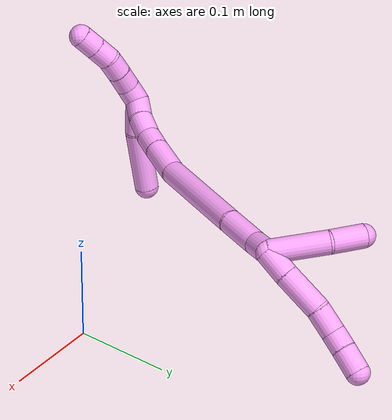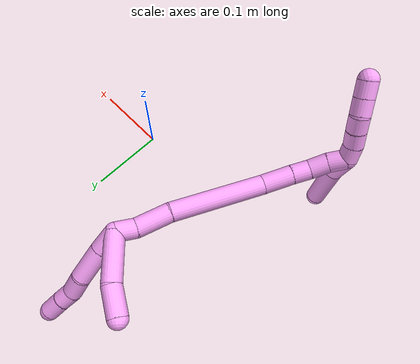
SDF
<sdf version="1.7">
 <world name="default">
  <model name="4">
   <static>0</static>
   <link name="4">
    <collision name="collision-cylinder-e_1_2_8">
     <pose>0.003945 0.01239 0.007158 -1.04694 0.269009 -0.155892</pose>
     <geometry><cylinder><radius>0.0125</radius><length>0.029686</length></cylinder></geometry>
     <surface>
      <friction><ode><mu>1.16</mu><mu2>1.16</mu2><slip1>0</slip1><slip2>0</slip2></ode></friction>
      <contact><ode><kp>1e+06</kp><kd>1</kd><max_vel>0</max_vel><min_depth>0.001</min_depth></ode></contact>
     </surface>
    </collision>
    <visual name="visual-cylinder-e_1_2_8">
     <pose>0.003945 0.01239 0.007158 -1.04694 0.269009 -0.155892</pose>
     <geometry><cylinder><radius>0.0125</radius><length>0.029686</length></cylinder></geometry>
     <material><ambient>1 0.65098 0.996078 1</ambient></material>
    </visual>
    <collision name="collision-cylinder-e_2_8_9">
     <pose>0.013096 0.043283 0.026526 -0.987464 0.23067 -0.124537</pose>
     <geometry><cylinder><radius>0.0125</radius><length>0.045543</length></cylinder></geometry>
     <surface>
      <friction><ode><mu>1.16</mu><mu2>1.16</mu2><slip1>0</slip1><slip2>0</slip2></ode></friction>
      <contact><ode><kp>1e+06</kp><kd>1</kd><max_vel>0</max_vel><min_depth>0.001</min_depth></ode></contact>
     </surface>
    </collision>
    <visual name="visual-cylinder-e_2_8_9">
     <pose>0.013096 0.043283 0.026526 -0.987464 0.23067 -0.124537</pose>
     <geometry><cylinder><radius>0.0125</radius><length>0.045543</length></cylinder></geometry>
     <material><ambient>1 0.65098 0.996078 1</ambient></material>
    </visual>
    <collision name="collision-cylinder-e_3_9_10">
     <pose>0.019255 0.074396 0.044609 -1.13497 0.068376 -0.043595</pose>
     <geometry><cylinder><radius>0.0125</radius><length>0.027886</length></cylinder></geometry>
     <surface>
      <friction><ode><mu>1.16</mu><mu2>1.16</mu2><slip1>0</slip1><slip2>0</slip2></ode></friction>
      <contact><ode><kp>1e+06</kp><kd>1</kd><max_vel>0</max_vel><min_depth>0.001</min_depth></ode></contact>
     </surface>
    </collision>
    <visual name="visual-cylinder-e_3_9_10">
     <pose>0.019255 0.074396 0.044609 -1.13497 0.068376 -0.043595</pose>
     <geometry><cylinder><radius>0.0125</radius><length>0.027886</length></cylinder></geometry>
     <material><ambient>1 0.65098 0.996078 1</ambient></material>
    </visual>
    <collision name="collision-cylinder-e_4_10_11">
     <pose>0.023687 0.095824 0.053839 -1.20696 0.353246 -0.244812</pose>
     <geometry><cylinder><radius>0.0125</radius><length>0.020113</length></cylinder></geometry>
     <surface>
      <friction><ode><mu>1.16</mu><mu2>1.16</mu2><slip1>0</slip1><slip2>0</slip2></ode></friction>
      <contact><ode><kp>1e+06</kp><kd>1</kd><max_vel>0</max_vel><min_depth>0.001</min_depth></ode></contact>
     </surface>
    </collision>
    <visual name="visual-cylinder-e_4_10_11">
     <pose>0.023687 0.095824 0.053839 -1.20696 0.353246 -0.244812</pose>
     <geometry><cylinder><radius>0.0125</radius><length>0.020113</length></cylinder></geometry>
     <material><ambient>1 0.65098 0.996078 1</ambient></material>
    </visual>
    <collision name="collision-cylinder-e_5_11_6">
     <pose>0.031069 0.116662 0.061608 -1.21915 0.295866 -0.207372</pose>
     <geometry><cylinder><radius>0.0125</radius><length>0.026772</length></cylinder></geometry>
     <surface>
      <friction><ode><mu>1.16</mu><mu2>1.16</mu2><slip1>0</slip1><slip2>0</slip2></ode></friction>
      <contact><ode><kp>1e+06</kp><kd>1</kd><max_vel>0</max_vel><min_depth>0.001</min_depth></ode></contact>
     </surface>
    </collision>
    <visual name="visual-cylinder-e_5_11_6">
     <pose>0.031069 0.116662 0.061608 -1.21915 0.295866 -0.207372</pose>
     <geometry><cylinder><radius>0.0125</radius><length>0.026772</length></cylinder></geometry>
     <material><ambient>1 0.65098 0.996078 1</ambient></material>
    </visual>
    <collision name="collision-cylinder-e_1_2_12">
     <pose>0.003291 -0.000436 0.031239 0.01397 0.104947 0.000734</pose>
     <geometry><cylinder><radius>0.0125</radius><length>0.06283</length></cylinder></geometry>
     <surface>
      <friction><ode><mu>1.16</mu><mu2>1.16</mu2><slip1>0</slip1><slip2>0</slip2></ode></friction>
      <contact><ode><kp>1e+06</kp><kd>1</kd><max_vel>0</max_vel><min_depth>0.001</min_depth></ode></contact>
     </surface>
    </collision>
    <visual name="visual-cylinder-e_1_2_12">
     <pose>0.003291 -0.000436 0.031239 0.01397 0.104947 0.000734</pose>
     <geometry><cylinder><radius>0.0125</radius><length>0.06283</length></cylinder></geometry>
     <material><ambient>1 0.65098 0.996078 1</ambient></material>
    </visual>
    <collision name="collision-cylinder-e_2_12_5">
     <pose>0.00374 -0.001302 0.08084 0.023348 -0.153485 -0.001795</pose>
     <geometry><cylinder><radius>0.0125</radius><length>0.03717</length></cylinder></geometry>
     <surface>
      <friction><ode><mu>1.16</mu><mu2>1.16</mu2><slip1>0</slip1><slip2>0</slip2></ode></friction>
      <contact><ode><kp>1e+06</kp><kd>1</kd><max_vel>0</max_vel><min_depth>0.001</min_depth></ode></contact>
     </surface>
    </collision>
    <visual name="visual-cylinder-e_2_12_5">
     <pose>0.00374 -0.001302 0.08084 0.023348 -0.153485 -0.001795</pose>
     <geometry><cylinder><radius>0.0125</radius><length>0.03717</length></cylinder></geometry>
     <material><ambient>1 0.65098 0.996078 1</ambient></material>
    </visual>
    <collision name="collision-cylinder-e_1_2_13">
     <pose>-0.011718 -0.004344 -0.002254 2.04943 -1.17515 -1.66231</pose>
     <geometry><cylinder><radius>0.0125</radius><length>0.025398</length></cylinder></geometry>
     <surface>
      <friction><ode><mu>1.16</mu><mu2>1.16</mu2><slip1>0</slip1><slip2>0</slip2></ode></friction>
      <contact><ode><kp>1e+06</kp><kd>1</kd><max_vel>0</max_vel><min_depth>0.001</min_depth></ode></contact>
     </surface>
    </collision>
    <visual name="visual-cylinder-e_1_2_13">
     <pose>-0.011718 -0.004344 -0.002254 2.04943 -1.17515 -1.66231</pose>
     <geometry><cylinder><radius>0.0125</radius><length>0.025398</length></cylinder></geometry>
     <material><ambient>1 0.65098 0.996078 1</ambient></material>
    </visual>
    <collision name="collision-cylinder-e_2_13_14">
     <pose>-0.040561 -0.020452 -0.012161 2.14754 -0.88429 -1.43507</pose>
     <geometry><cylinder><radius>0.0125</radius><length>0.044283</length></cylinder></geometry>
     <surface>
      <friction><ode><mu>1.16</mu><mu2>1.16</mu2><slip1>0</slip1><slip2>0</slip2></ode></friction>
      <contact><ode><kp>1e+06</kp><kd>1</kd><max_vel>0</max_vel><min_depth>0.001</min_depth></ode></contact>
     </surface>
    </collision>
    <visual name="visual-cylinder-e_2_13_14">
     <pose>-0.040561 -0.020452 -0.012161 2.14754 -0.88429 -1.43507</pose>
     <geometry><cylinder><radius>0.0125</radius><length>0.044283</length></cylinder></geometry>
     <material><ambient>1 0.65098 0.996078 1</ambient></material>
    </visual>
    <collision name="collision-cylinder-e_3_14_15">
     <pose>-0.110026 -0.059375 -0.034592 2.06912 -1.03721 -1.53026</pose>
     <geometry><cylinder><radius>0.0125</radius><length>0.121579</length></cylinder></geometry>
     <surface>
      <friction><ode><mu>1.16</mu><mu2>1.16</mu2><slip1>0</slip1><slip2>0</slip2></ode></friction>
      <contact><ode><kp>1e+06</kp><kd>1</kd><max_vel>0</max_vel><min_depth>0.001</min_depth></ode></contact>
     </surface>
    </collision>
    <visual name="visual-cylinder-e_3_14_15">
     <pose>-0.110026 -0.059375 -0.034592 2.06912 -1.03721 -1.53026</pose>
     <geometry><cylinder><radius>0.0125</radius><length>0.121579</length></cylinder></geometry>
     <material><ambient>1 0.65098 0.996078 1</ambient></material>
    </visual>
    <collision name="collision-cylinder-e_4_15_16">
     <pose>-0.176754 -0.098948 -0.053192 1.86953 -0.836456 -1.08365</pose>
     <geometry><cylinder><radius>0.0125</radius><length>0.038768</length></cylinder></geometry>
     <surface>
      <friction><ode><mu>1.16</mu><mu2>1.16</mu2><slip1>0</slip1><slip2>0</slip2></ode></friction>
      <contact><ode><kp>1e+06</kp><kd>1</kd><max_vel>0</max_vel><min_depth>0.001</min_depth></ode></contact>
     </surface>
    </collision>
    <visual name="visual-cylinder-e_4_15_16">
     <pose>-0.176754 -0.098948 -0.053192 1.86953 -0.836456 -1.08365</pose>
     <geometry><cylinder><radius>0.0125</radius><length>0.038768</length></cylinder></geometry>
     <material><ambient>1 0.65098 0.996078 1</ambient></material>
    </visual>
    <collision name="collision-cylinder-e_5_16_17">
     <pose>-0.199849 -0.118707 -0.058829 1.81297 -0.855404 -1.05438</pose>
     <geometry><cylinder><radius>0.0125</radius><length>0.023071</length></cylinder></geometry>
     <surface>
      <friction><ode><mu>1.16</mu><mu2>1.16</mu2><slip1>0</slip1><slip2>0</slip2></ode></friction>
      <contact><ode><kp>1e+06</kp><kd>1</kd><max_vel>0</max_vel><min_depth>0.001</min_depth></ode></contact>
     </surface>
    </collision>
    <visual name="visual-cylinder-e_5_16_17">
     <pose>-0.199849 -0.118707 -0.058829 1.81297 -0.855404 -1.05438</pose>
     <geometry><cylinder><radius>0.0125</radius><length>0.023071</length></cylinder></geometry>
     <material><ambient>1 0.65098 0.996078 1</ambient></material>
    </visual>
    <collision name="collision-cylinder-e_6_17_18">
     <pose>-0.215518 -0.135779 -0.062124 1.72183 -0.615813 -0.708903</pose>
     <geometry><cylinder><radius>0.0125</radius><length>0.024104</length></cylinder></geometry>
     <surface>
      <friction><ode><mu>1.16</mu><mu2>1.16</mu2><slip1>0</slip1><slip2>0</slip2></ode></friction>
      <contact><ode><kp>1e+06</kp><kd>1</kd><max_vel>0</max_vel><min_depth>0.001</min_depth></ode></contact>
     </surface>
    </collision>
    <visual name="visual-cylinder-e_6_17_18">
     <pose>-0.215518 -0.135779 -0.062124 1.72183 -0.615813 -0.708903</pose>
     <geometry><cylinder><radius>0.0125</radius><length>0.024104</length></cylinder></geometry>
     <material><ambient>1 0.65098 0.996078 1</ambient></material>
    </visual>
    <collision name="collision-cylinder-e_7_18_1">
     <pose>-0.229007 -0.154821 -0.062874 1.49254 -0.609744 -0.566308</pose>
     <geometry><cylinder><radius>0.0125</radius><length>0.022797</length></cylinder></geometry>
     <surface>
      <friction><ode><mu>1.16</mu><mu2>1.16</mu2><slip1>0</slip1><slip2>0</slip2></ode></friction>
      <contact><ode><kp>1e+06</kp><kd>1</kd><max_vel>0</max_vel><min_depth>0.001</min_depth></ode></contact>
     </surface>
    </collision>
    <visual name="visual-cylinder-e_7_18_1">
     <pose>-0.229007 -0.154821 -0.062874 1.49254 -0.609744 -0.566308</pose>
     <geometry><cylinder><radius>0.0125</radius><length>0.022797</length></cylinder></geometry>
     <material><ambient>1 0.65098 0.996078 1</ambient></material>
    </visual>
    <collision name="collision-cylinder-e_1_1_19">
     <pose>-0.241969 -0.147626 -0.063217 -1.63576 -0.370885 0.395173</pose>
     <geometry><cylinder><radius>0.0125</radius><length>0.035506</length></cylinder></geometry>
     <surface>
      <friction><ode><mu>1.16</mu><mu2>1.16</mu2><slip1>0</slip1><slip2>0</slip2></ode></friction>
      <contact><ode><kp>1e+06</kp><kd>1</kd><max_vel>0</max_vel><min_depth>0.001</min_depth></ode></contact>
     </surface>
    </collision>
    <visual name="visual-cylinder-e_1_1_19">
     <pose>-0.241969 -0.147626 -0.063217 -1.63576 -0.370885 0.395173</pose>
     <geometry><cylinder><radius>0.0125</radius><length>0.035506</length></cylinder></geometry>
     <material><ambient>1 0.65098 0.996078 1</ambient></material>
    </visual>
    <collision name="collision-cylinder-e_2_19_4">
     <pose>-0.261461 -0.101861 -0.06061 -1.4456 -0.416905 0.368903</pose>
     <geometry><cylinder><radius>0.0125</radius><length>0.064494</length></cylinder></geometry>
     <surface>
      <friction><ode><mu>1.16</mu><mu2>1.16</mu2><slip1>0</slip1><slip2>0</slip2></ode></friction>
      <contact><ode><kp>1e+06</kp><kd>1</kd><max_vel>0</max_vel><min_depth>0.001</min_depth></ode></contact>
     </surface>
    </collision>
    <visual name="visual-cylinder-e_2_19_4">
     <pose>-0.261461 -0.101861 -0.06061 -1.4456 -0.416905 0.368903</pose>
     <geometry><cylinder><radius>0.0125</radius><length>0.064494</length></cylinder></geometry>
     <material><ambient>1 0.65098 0.996078 1</ambient></material>
    </visual>
    <collision name="collision-cylinder-e_1_1_20">
     <pose>-0.232741 -0.172557 -0.066758 2.07217 0.283082 0.472208</pose>
     <geometry><cylinder><radius>0.0125</radius><length>0.02</length></cylinder></geometry>
     <surface>
      <friction><ode><mu>1.16</mu><mu2>1.16</mu2><slip1>0</slip1><slip2>0</slip2></ode></friction>
      <contact><ode><kp>1e+06</kp><kd>1</kd><max_vel>0</max_vel><min_depth>0.001</min_depth></ode></contact>
     </surface>
    </collision>
    <visual name="visual-cylinder-e_1_1_20">
     <pose>-0.232741 -0.172557 -0.066758 2.07217 0.283082 0.472208</pose>
     <geometry><cylinder><radius>0.0125</radius><length>0.02</length></cylinder></geometry>
     <material><ambient>1 0.65098 0.996078 1</ambient></material>
    </visual>
    <collision name="collision-cylinder-e_2_20_21">
     <pose>-0.225176 -0.188458 -0.075984 2.12319 0.497516 0.853976</pose>
     <geometry><cylinder><radius>0.0125</radius><length>0.02</length></cylinder></geometry>
     <surface>
      <friction><ode><mu>1.16</mu><mu2>1.16</mu2><slip1>0</slip1><slip2>0</slip2></ode></friction>
      <contact><ode><kp>1e+06</kp><kd>1</kd><max_vel>0</max_vel><min_depth>0.001</min_depth></ode></contact>
     </surface>
    </collision>
    <visual name="visual-cylinder-e_2_20_21">
     <pose>-0.225176 -0.188458 -0.075984 2.12319 0.497516 0.853976</pose>
     <geometry><cylinder><radius>0.0125</radius><length>0.02</length></cylinder></geometry>
     <material><ambient>1 0.65098 0.996078 1</ambient></material>
    </visual>
    <collision name="collision-cylinder-e_3_21_22">
     <pose>-0.216115 -0.203519 -0.08551 2.14596 0.443206 0.785999</pose>
     <geometry><cylinder><radius>0.0125</radius><length>0.02</length></cylinder></geometry>
     <surface>
      <friction><ode><mu>1.16</mu><mu2>1.16</mu2><slip1>0</slip1><slip2>0</slip2></ode></friction>
      <contact><ode><kp>1e+06</kp><kd>1</kd><max_vel>0</max_vel><min_depth>0.001</min_depth></ode></contact>
     </surface>
    </collision>
    <visual name="visual-cylinder-e_3_21_22">
     <pose>-0.216115 -0.203519 -0.08551 2.14596 0.443206 0.785999</pose>
     <geometry><cylinder><radius>0.0125</radius><length>0.02</length></cylinder></geometry>
     <material><ambient>1 0.65098 0.996078 1</ambient></material>
    </visual>
    <collision name="collision-cylinder-e_4_22_23">
     <pose>-0.209437 -0.21794 -0.097316 2.35991 0.241261 0.572243</pose>
     <geometry><cylinder><radius>0.0125</radius><length>0.02</length></cylinder></geometry>
     <surface>
      <friction><ode><mu>1.16</mu><mu2>1.16</mu2><slip1>0</slip1><slip2>0</slip2></ode></friction>
      <contact><ode><kp>1e+06</kp><kd>1</kd><max_vel>0</max_vel><min_depth>0.001</min_depth></ode></contact>
     </surface>
    </collision>
    <visual name="visual-cylinder-e_4_22_23">
     <pose>-0.209437 -0.21794 -0.097316 2.35991 0.241261 0.572243</pose>
     <geometry><cylinder><radius>0.0125</radius><length>0.02</length></cylinder></geometry>
     <material><ambient>1 0.65098 0.996078 1</ambient></material>
    </visual>
    <collision name="collision-cylinder-e_5_23_3">
     <pose>-0.204708 -0.231584 -0.111153 2.36659 0.236199 0.565832</pose>
     <geometry><cylinder><radius>0.0125</radius><length>0.02</length></cylinder></geometry>
     <surface>
      <friction><ode><mu>1.16</mu><mu2>1.16</mu2><slip1>0</slip1><slip2>0</slip2></ode></friction>
      <contact><ode><kp>1e+06</kp><kd>1</kd><max_vel>0</max_vel><min_depth>0.001</min_depth></ode></contact>
     </surface>
    </collision>
    <visual name="visual-cylinder-e_5_23_3">
     <pose>-0.204708 -0.231584 -0.111153 2.36659 0.236199 0.565832</pose>
     <geometry><cylinder><radius>0.0125</radius><length>0.02</length></cylinder></geometry>
     <material><ambient>1 0.65098 0.996078 1</ambient></material>
    </visual>
    <collision name="collision-sphere-3">
     <pose>-0.202368 -0.238386 -0.118099 0 -0 0</pose>
     <geometry><sphere><radius>0.0125</radius></sphere></geometry>
     <surface>
      <friction><ode><mu>1.16</mu><mu2>1.16</mu2><slip1>0</slip1><slip2>0</slip2></ode></friction>
      <contact><ode><kp>1e+06</kp><kd>1</kd><max_vel>0</max_vel><min_depth>0.001</min_depth></ode></contact>
     </surface>
    </collision>
    <visual name="visual-sphere-3">
     <pose>-0.202368 -0.238386 -0.118099 0 -0 0</pose>
     <geometry><sphere><radius>0.0125</radius></sphere></geometry>
     <material><ambient>1 0.65098 0.996078 1</ambient></material>
    </visual>
    <collision name="collision-sphere-23">
     <pose>-0.207048 -0.224781 -0.104207 0 -0 0</pose>
     <geometry><sphere><radius>0.0125</radius></sphere></geometry>
     <surface>
      <friction><ode><mu>1.16</mu><mu2>1.16</mu2><slip1>0</slip1><slip2>0</slip2></ode></friction>
      <contact><ode><kp>1e+06</kp><kd>1</kd><max_vel>0</max_vel><min_depth>0.001</min_depth></ode></contact>
     </surface>
    </collision>
    <visual name="visual-sphere-23">
     <pose>-0.207048 -0.224781 -0.104207 0 -0 0</pose>
     <geometry><sphere><radius>0.0125</radius></sphere></geometry>
     <material><ambient>1 0.65098 0.996078 1</ambient></material>
    </visual>
    <collision name="collision-sphere-22">
     <pose>-0.211827 -0.211099 -0.090424 0 -0 0</pose>
     <geometry><sphere><radius>0.0125</radius></sphere></geometry>
     <surface>
      <friction><ode><mu>1.16</mu><mu2>1.16</mu2><slip1>0</slip1><slip2>0</slip2></ode></friction>
      <contact><ode><kp>1e+06</kp><kd>1</kd><max_vel>0</max_vel><min_depth>0.001</min_depth></ode></contact>
     </surface>
    </collision>
    <visual name="visual-sphere-22">
     <pose>-0.211827 -0.211099 -0.090424 0 -0 0</pose>
     <geometry><sphere><radius>0.0125</radius></sphere></geometry>
     <material><ambient>1 0.65098 0.996078 1</ambient></material>
    </visual>
    <collision name="collision-sphere-21">
     <pose>-0.220403 -0.195939 -0.080596 0 -0 0</pose>
     <geometry><sphere><radius>0.0125</radius></sphere></geometry>
     <surface>
      <friction><ode><mu>1.16</mu><mu2>1.16</mu2><slip1>0</slip1><slip2>0</slip2></ode></friction>
      <contact><ode><kp>1e+06</kp><kd>1</kd><max_vel>0</max_vel><min_depth>0.001</min_depth></ode></contact>
     </surface>
    </collision>
    <visual name="visual-sphere-21">
     <pose>-0.220403 -0.195939 -0.080596 0 -0 0</pose>
     <geometry><sphere><radius>0.0125</radius></sphere></geometry>
     <material><ambient>1 0.65098 0.996078 1</ambient></material>
    </visual>
    <collision name="collision-sphere-20">
     <pose>-0.229948 -0.180977 -0.071373 0 -0 0</pose>
     <geometry><sphere><radius>0.0125</radius></sphere></geometry>
     <surface>
      <friction><ode><mu>1.16</mu><mu2>1.16</mu2><slip1>0</slip1><slip2>0</slip2></ode></friction>
      <contact><ode><kp>1e+06</kp><kd>1</kd><max_vel>0</max_vel><min_depth>0.001</min_depth></ode></contact>
     </surface>
    </collision>
    <visual name="visual-sphere-20">
     <pose>-0.229948 -0.180977 -0.071373 0 -0 0</pose>
     <geometry><sphere><radius>0.0125</radius></sphere></geometry>
     <material><ambient>1 0.65098 0.996078 1</ambient></material>
    </visual>
    <collision name="collision-sphere-4">
     <pose>-0.274519 -0.072606 -0.056928 0 -0 0</pose>
     <geometry><sphere><radius>0.0125</radius></sphere></geometry>
     <surface>
      <friction><ode><mu>1.16</mu><mu2>1.16</mu2><slip1>0</slip1><slip2>0</slip2></ode></friction>
      <contact><ode><kp>1e+06</kp><kd>1</kd><max_vel>0</max_vel><min_depth>0.001</min_depth></ode></contact>
     </surface>
    </collision>
    <visual name="visual-sphere-4">
     <pose>-0.274519 -0.072606 -0.056928 0 -0 0</pose>
     <geometry><sphere><radius>0.0125</radius></sphere></geometry>
     <material><ambient>1 0.65098 0.996078 1</ambient></material>
    </visual>
    <collision name="collision-sphere-6">
     <pose>0.034971 0.128683 0.066018 0 -0 0</pose>
     <geometry><sphere><radius>0.0125</radius></sphere></geometry>
     <surface>
      <friction><ode><mu>1.16</mu><mu2>1.16</mu2><slip1>0</slip1><slip2>0</slip2></ode></friction>
      <contact><ode><kp>1e+06</kp><kd>1</kd><max_vel>0</max_vel><min_depth>0.001</min_depth></ode></contact>
     </surface>
    </collision>
    <visual name="visual-sphere-6">
     <pose>0.034971 0.128683 0.066018 0 -0 0</pose>
     <geometry><sphere><radius>0.0125</radius></sphere></geometry>
     <material><ambient>1 0.65098 0.996078 1</ambient></material>
    </visual>
    <collision name="collision-sphere-11">
     <pose>0.027166 0.104642 0.057197 0 -0 0</pose>
     <geometry><sphere><radius>0.0125</radius></sphere></geometry>
     <surface>
      <friction><ode><mu>1.16</mu><mu2>1.16</mu2><slip1>0</slip1><slip2>0</slip2></ode></friction>
      <contact><ode><kp>1e+06</kp><kd>1</kd><max_vel>0</max_vel><min_depth>0.001</min_depth></ode></contact>
     </surface>
    </collision>
    <visual name="visual-sphere-11">
     <pose>0.027166 0.104642 0.057197 0 -0 0</pose>
     <geometry><sphere><radius>0.0125</radius></sphere></geometry>
     <material><ambient>1 0.65098 0.996078 1</ambient></material>
    </visual>
    <collision name="collision-sphere-10">
     <pose>0.020208 0.087006 0.050482 0 -0 0</pose>
     <geometry><sphere><radius>0.0125</radius></sphere></geometry>
     <surface>
      <friction><ode><mu>1.16</mu><mu2>1.16</mu2><slip1>0</slip1><slip2>0</slip2></ode></friction>
      <contact><ode><kp>1e+06</kp><kd>1</kd><max_vel>0</max_vel><min_depth>0.001</min_depth></ode></contact>
     </surface>
    </collision>
    <visual name="visual-sphere-10">
     <pose>0.020208 0.087006 0.050482 0 -0 0</pose>
     <geometry><sphere><radius>0.0125</radius></sphere></geometry>
     <material><ambient>1 0.65098 0.996078 1</ambient></material>
    </visual>
    <collision name="collision-sphere-9">
     <pose>0.018302 0.061786 0.038737 0 -0 0</pose>
     <geometry><sphere><radius>0.0125</radius></sphere></geometry>
     <surface>
      <friction><ode><mu>1.16</mu><mu2>1.16</mu2><slip1>0</slip1><slip2>0</slip2></ode></friction>
      <contact><ode><kp>1e+06</kp><kd>1</kd><max_vel>0</max_vel><min_depth>0.001</min_depth></ode></contact>
     </surface>
    </collision>
    <visual name="visual-sphere-9">
     <pose>0.018302 0.061786 0.038737 0 -0 0</pose>
     <geometry><sphere><radius>0.0125</radius></sphere></geometry>
     <material><ambient>1 0.65098 0.996078 1</ambient></material>
    </visual>
    <collision name="collision-sphere-2">
     <geometry><sphere><radius>0.0125</radius></sphere></geometry>
     <surface>
      <friction><ode><mu>1.16</mu><mu2>1.16</mu2><slip1>0</slip1><slip2>0</slip2></ode></friction>
      <contact><ode><kp>1e+06</kp><kd>1</kd><max_vel>0</max_vel><min_depth>0.001</min_depth></ode></contact>
     </surface>
    </collision>
    <visual name="visual-sphere-2">
     <geometry><sphere><radius>0.0125</radius></sphere></geometry>
     <material><ambient>1 0.65098 0.996078 1</ambient></material>
    </visual>
    <collision name="collision-sphere-19">
     <pose>-0.248403 -0.131115 -0.064292 0 -0 0</pose>
     <geometry><sphere><radius>0.0125</radius></sphere></geometry>
     <surface>
      <friction><ode><mu>1.16</mu><mu2>1.16</mu2><slip1>0</slip1><slip2>0</slip2></ode></friction>
      <contact><ode><kp>1e+06</kp><kd>1</kd><max_vel>0</max_vel><min_depth>0.001</min_depth></ode></contact>
     </surface>
    </collision>
    <visual name="visual-sphere-19">
     <pose>-0.248403 -0.131115 -0.064292 0 -0 0</pose>
     <geometry><sphere><radius>0.0125</radius></sphere></geometry>
     <material><ambient>1 0.65098 0.996078 1</ambient></material>
    </visual>
    <collision name="collision-sphere-8">
     <pose>0.00789 0.024781 0.014316 0 -0 0</pose>
     <geometry><sphere><radius>0.0125</radius></sphere></geometry>
     <surface>
      <friction><ode><mu>1.16</mu><mu2>1.16</mu2><slip1>0</slip1><slip2>0</slip2></ode></friction>
      <contact><ode><kp>1e+06</kp><kd>1</kd><max_vel>0</max_vel><min_depth>0.001</min_depth></ode></contact>
     </surface>
    </collision>
    <visual name="visual-sphere-8">
     <pose>0.00789 0.024781 0.014316 0 -0 0</pose>
     <geometry><sphere><radius>0.0125</radius></sphere></geometry>
     <material><ambient>1 0.65098 0.996078 1</ambient></material>
    </visual>
    <collision name="collision-sphere-12">
     <pose>0.006582 -0.000873 0.062478 0 -0 0</pose>
     <geometry><sphere><radius>0.0125</radius></sphere></geometry>
     <surface>
      <friction><ode><mu>1.16</mu><mu2>1.16</mu2><slip1>0</slip1><slip2>0</slip2></ode></friction>
      <contact><ode><kp>1e+06</kp><kd>1</kd><max_vel>0</max_vel><min_depth>0.001</min_depth></ode></contact>
     </surface>
    </collision>
    <visual name="visual-sphere-12">
     <pose>0.006582 -0.000873 0.062478 0 -0 0</pose>
     <geometry><sphere><radius>0.0125</radius></sphere></geometry>
     <material><ambient>1 0.65098 0.996078 1</ambient></material>
    </visual>
    <collision name="collision-sphere-5">
     <pose>0.000899 -0.00173 0.099201 0 -0 0</pose>
     <geometry><sphere><radius>0.0125</radius></sphere></geometry>
     <surface>
      <friction><ode><mu>1.16</mu><mu2>1.16</mu2><slip1>0</slip1><slip2>0</slip2></ode></friction>
      <contact><ode><kp>1e+06</kp><kd>1</kd><max_vel>0</max_vel><min_depth>0.001</min_depth></ode></contact>
     </surface>
    </collision>
    <visual name="visual-sphere-5">
     <pose>0.000899 -0.00173 0.099201 0 -0 0</pose>
     <geometry><sphere><radius>0.0125</radius></sphere></geometry>
     <material><ambient>1 0.65098 0.996078 1</ambient></material>
    </visual>
    <collision name="collision-sphere-13">
     <pose>-0.023436 -0.008688 -0.004508 0 -0 0</pose>
     <geometry><sphere><radius>0.0125</radius></sphere></geometry>
     <surface>
      <friction><ode><mu>1.16</mu><mu2>1.16</mu2><slip1>0</slip1><slip2>0</slip2></ode></friction>
      <contact><ode><kp>1e+06</kp><kd>1</kd><max_vel>0</max_vel><min_depth>0.001</min_depth></ode></contact>
     </surface>
    </collision>
    <visual name="visual-sphere-13">
     <pose>-0.023436 -0.008688 -0.004508 0 -0 0</pose>
     <geometry><sphere><radius>0.0125</radius></sphere></geometry>
     <material><ambient>1 0.65098 0.996078 1</ambient></material>
    </visual>
    <collision name="collision-sphere-14">
     <pose>-0.057687 -0.032216 -0.019814 0 -0 0</pose>
     <geometry><sphere><radius>0.0125</radius></sphere></geometry>
     <surface>
      <friction><ode><mu>1.16</mu><mu2>1.16</mu2><slip1>0</slip1><slip2>0</slip2></ode></friction>
      <contact><ode><kp>1e+06</kp><kd>1</kd><max_vel>0</max_vel><min_depth>0.001</min_depth></ode></contact>
     </surface>
    </collision>
    <visual name="visual-sphere-14">
     <pose>-0.057687 -0.032216 -0.019814 0 -0 0</pose>
     <geometry><sphere><radius>0.0125</radius></sphere></geometry>
     <material><ambient>1 0.65098 0.996078 1</ambient></material>
    </visual>
    <collision name="collision-sphere-15">
     <pose>-0.162366 -0.086534 -0.049369 0 -0 0</pose>
     <geometry><sphere><radius>0.0125</radius></sphere></geometry>
     <surface>
      <friction><ode><mu>1.16</mu><mu2>1.16</mu2><slip1>0</slip1><slip2>0</slip2></ode></friction>
      <contact><ode><kp>1e+06</kp><kd>1</kd><max_vel>0</max_vel><min_depth>0.001</min_depth></ode></contact>
     </surface>
    </collision>
    <visual name="visual-sphere-15">
     <pose>-0.162366 -0.086534 -0.049369 0 -0 0</pose>
     <geometry><sphere><radius>0.0125</radius></sphere></geometry>
     <material><ambient>1 0.65098 0.996078 1</ambient></material>
    </visual>
    <collision name="collision-sphere-16">
     <pose>-0.191142 -0.111362 -0.057015 0 -0 0</pose>
     <geometry><sphere><radius>0.0125</radius></sphere></geometry>
     <surface>
      <friction><ode><mu>1.16</mu><mu2>1.16</mu2><slip1>0</slip1><slip2>0</slip2></ode></friction>
      <contact><ode><kp>1e+06</kp><kd>1</kd><max_vel>0</max_vel><min_depth>0.001</min_depth></ode></contact>
     </surface>
    </collision>
    <visual name="visual-sphere-16">
     <pose>-0.191142 -0.111362 -0.057015 0 -0 0</pose>
     <geometry><sphere><radius>0.0125</radius></sphere></geometry>
     <material><ambient>1 0.65098 0.996078 1</ambient></material>
    </visual>
    <collision name="collision-sphere-17">
     <pose>-0.208556 -0.126052 -0.060644 0 -0 0</pose>
     <geometry><sphere><radius>0.0125</radius></sphere></geometry>
     <surface>
      <friction><ode><mu>1.16</mu><mu2>1.16</mu2><slip1>0</slip1><slip2>0</slip2></ode></friction>
      <contact><ode><kp>1e+06</kp><kd>1</kd><max_vel>0</max_vel><min_depth>0.001</min_depth></ode></contact>
     </surface>
    </collision>
    <visual name="visual-sphere-17">
     <pose>-0.208556 -0.126052 -0.060644 0 -0 0</pose>
     <geometry><sphere><radius>0.0125</radius></sphere></geometry>
     <material><ambient>1 0.65098 0.996078 1</ambient></material>
    </visual>
    <collision name="collision-sphere-18">
     <pose>-0.22248 -0.145505 -0.063604 0 -0 0</pose>
     <geometry><sphere><radius>0.0125</radius></sphere></geometry>
     <surface>
      <friction><ode><mu>1.16</mu><mu2>1.16</mu2><slip1>0</slip1><slip2>0</slip2></ode></friction>
      <contact><ode><kp>1e+06</kp><kd>1</kd><max_vel>0</max_vel><min_depth>0.001</min_depth></ode></contact>
     </surface>
    </collision>
    <visual name="visual-sphere-18">
     <pose>-0.22248 -0.145505 -0.063604 0 -0 0</pose>
     <geometry><sphere><radius>0.0125</radius></sphere></geometry>
     <material><ambient>1 0.65098 0.996078 1</ambient></material>
    </visual>
    <collision name="collision-sphere-1">
     <pose>-0.235535 -0.164137 -0.062143 0 -0 0</pose>
     <geometry><sphere><radius>0.0125</radius></sphere></geometry>
     <surface>
      <friction><ode><mu>1.16</mu><mu2>1.16</mu2><slip1>0</slip1><slip2>0</slip2></ode></friction>
      <contact><ode><kp>1e+06</kp><kd>1</kd><max_vel>0</max_vel><min_depth>0.001</min_depth></ode></contact>
     </surface>
    </collision>
    <visual name="visual-sphere-1">
     <pose>-0.235535 -0.164137 -0.062143 0 -0 0</pose>
     <geometry><sphere><radius>0.0125</radius></sphere></geometry>
     <material><ambient>1 0.65098 0.996078 1</ambient></material>
    </visual>
    <inertial>
     <pose>-0.108883 -0.059087 -0.0209 0 -0 0</pose>
     <mass>0.75</mass>
     <inertia><ixx>-9e-06</ixx><ixy>0</ixy><ixz>0</ixz><iyy>8.8e-05</iyy><iyz>0</iyz><izz>0.000203</izz></inertia>
    </inertial>
   </link>
   <pose>-0.11071 0.145578 0.100319 -1.57167 -0.576934 0.904878</pose>
  </model>
 </world>
</sdf>
